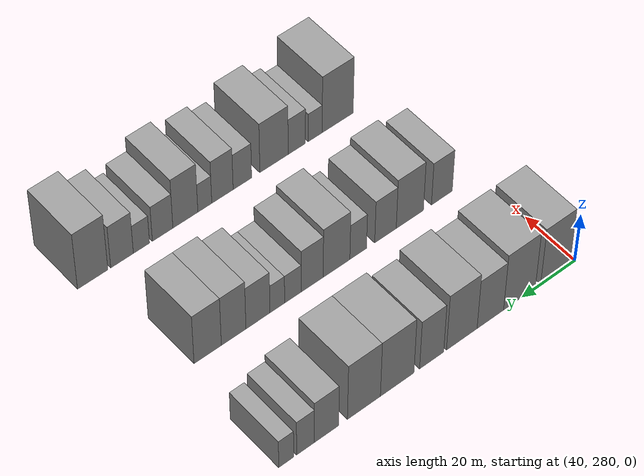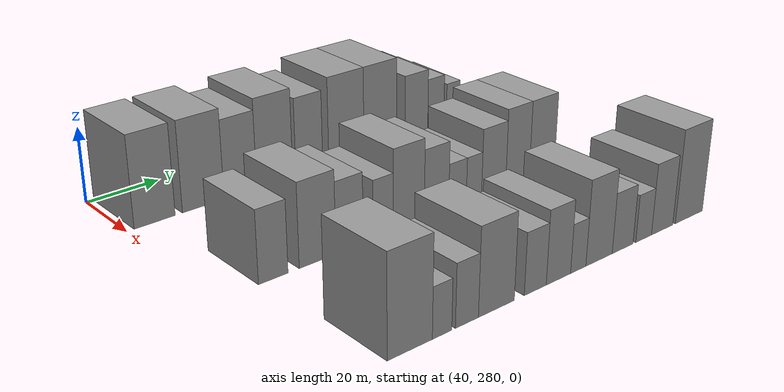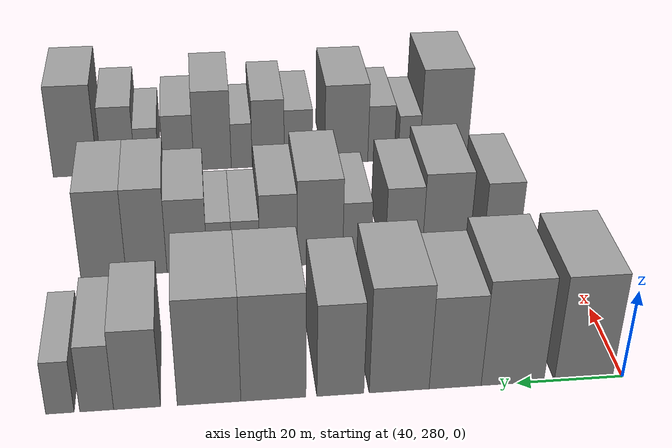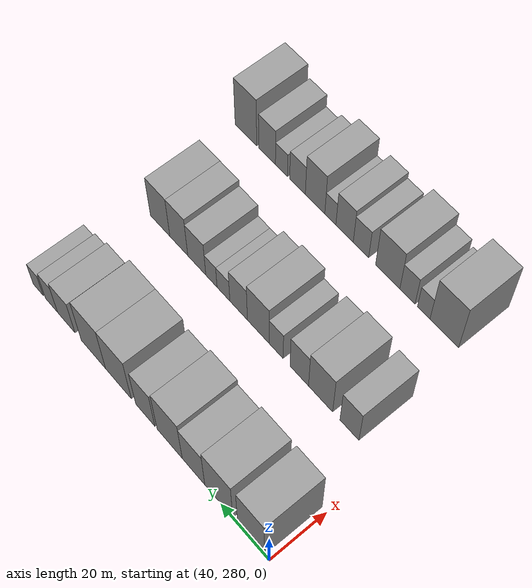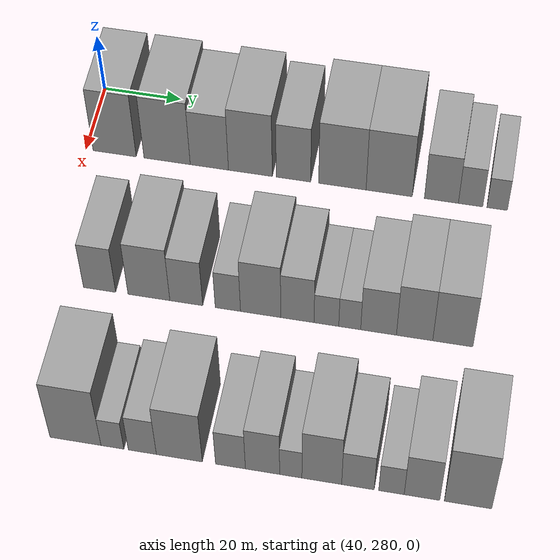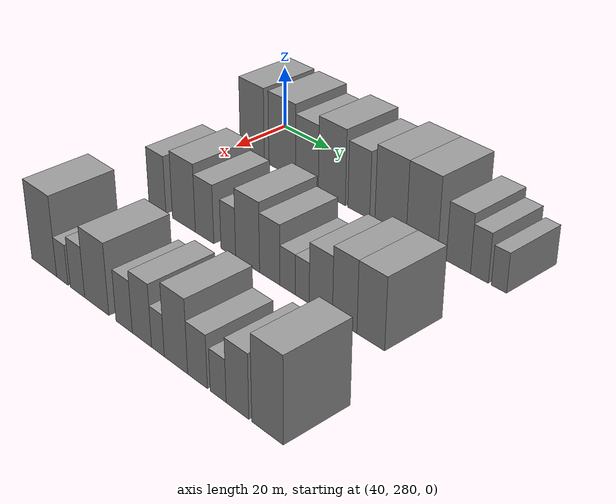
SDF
<sdf version="1.6">
 <world name="default">
  <model name="building_72">
   <static>1</static>
   <pose>50.0000 287.4389 0 0.000000 0.000000 0.000000</pose>
   <link name="link">
    <pose>0 0 12.00 0 0 0</pose>
    <collision name="collision"><geometry><box><size>20.0000 11.0561 24.0000</size></box></geometry></collision>
    <visual name="visual">
     <cast_shadows>0</cast_shadows>
     <geometry><box><size>20.0000 11.0561 24.0000</size></box></geometry>
     <material>
      <script>
       <uri>model://grey_wall/materials/scripts</uri>
       <uri>model://grey_wall/materials/textures</uri>
       <name>vrc/grey_wall</name>
      </script>
     </material>
    </visual>
   </link>
  </model>
  <model name="building_73">
   <static>1</static>
   <pose>50.0000 300.8716 0 0.000000 0.000000 0.000000</pose>
   <link name="link">
    <pose>0 0 12.00 0 0 0</pose>
    <collision name="collision"><geometry><box><size>20.0000 11.8092 24.0000</size></box></geometry></collision>
    <visual name="visual">
     <cast_shadows>0</cast_shadows>
     <geometry><box><size>20.0000 11.8092 24.0000</size></box></geometry>
     <material>
      <script>
       <uri>model://grey_wall/materials/scripts</uri>
       <uri>model://grey_wall/materials/textures</uri>
       <name>vrc/grey_wall</name>
      </script>
     </material>
    </visual>
   </link>
  </model>
  <model name="building_74">
   <static>1</static>
   <pose>50.0000 311.6322 0 0.000000 0.000000 0.000000</pose>
   <link name="link">
    <pose>0 0 10.50 0 0 0</pose>
    <collision name="collision"><geometry><box><size>20.0000 9.7121 21.0000</size></box></geometry></collision>
    <visual name="visual">
     <cast_shadows>0</cast_shadows>
     <geometry><box><size>20.0000 9.7121 21.0000</size></box></geometry>
     <material>
      <script>
       <uri>model://grey_wall/materials/scripts</uri>
       <uri>model://grey_wall/materials/textures</uri>
       <name>vrc/grey_wall</name>
      </script>
     </material>
    </visual>
   </link>
  </model>
  <model name="building_75">
   <static>1</static>
   <pose>50.0000 322.0391 0 0.000000 0.000000 0.000000</pose>
   <link name="link">
    <pose>0 0 12.00 0 0 0</pose>
    <collision name="collision"><geometry><box><size>20.0000 11.1015 24.0000</size></box></geometry></collision>
    <visual name="visual">
     <cast_shadows>0</cast_shadows>
     <geometry><box><size>20.0000 11.1015 24.0000</size></box></geometry>
     <material>
      <script>
       <uri>model://grey_wall/materials/scripts</uri>
       <uri>model://grey_wall/materials/textures</uri>
       <name>vrc/grey_wall</name>
      </script>
     </material>
    </visual>
   </link>
  </model>
  <model name="building_76">
   <static>1</static>
   <pose>50.0000 332.9055 0 0.000000 0.000000 0.000000</pose>
   <link name="link">
    <pose>0 0 10.50 0 0 0</pose>
    <collision name="collision"><geometry><box><size>20.0000 8.6314 21.0000</size></box></geometry></collision>
    <visual name="visual">
     <cast_shadows>0</cast_shadows>
     <geometry><box><size>20.0000 8.6314 21.0000</size></box></geometry>
     <material>
      <script>
       <uri>model://grey_wall/materials/scripts</uri>
       <uri>model://grey_wall/materials/textures</uri>
       <name>vrc/grey_wall</name>
      </script>
     </material>
    </visual>
   </link>
  </model>
  <model name="building_77">
   <static>1</static>
   <pose>50.0000 345.1486 0 0.000000 0.000000 0.000000</pose>
   <link name="link">
    <pose>0 0 12.00 0 0 0</pose>
    <collision name="collision"><geometry><box><size>20.0000 11.8547 24.0000</size></box></geometry></collision>
    <visual name="visual">
     <cast_shadows>0</cast_shadows>
     <geometry><box><size>20.0000 11.8547 24.0000</size></box></geometry>
     <material>
      <script>
       <uri>model://grey_wall/materials/scripts</uri>
       <uri>model://grey_wall/materials/textures</uri>
       <name>vrc/grey_wall</name>
      </script>
     </material>
    </visual>
   </link>
  </model>
  <model name="building_78">
   <static>1</static>
   <pose>50.0000 356.8210 0 0.000000 0.000000 0.000000</pose>
   <link name="link">
    <pose>0 0 12.00 0 0 0</pose>
    <collision name="collision"><geometry><box><size>20.0000 11.4901 24.0000</size></box></geometry></collision>
    <visual name="visual">
     <cast_shadows>0</cast_shadows>
     <geometry><box><size>20.0000 11.4901 24.0000</size></box></geometry>
     <material>
      <script>
       <uri>model://grey_wall/materials/scripts</uri>
       <uri>model://grey_wall/materials/textures</uri>
       <name>vrc/grey_wall</name>
      </script>
     </material>
    </visual>
   </link>
  </model>
  <model name="building_79">
   <static>1</static>
   <pose>50.0000 369.7659 0 0.000000 0.000000 0.000000</pose>
   <link name="link">
    <pose>0 0 9.00 0 0 0</pose>
    <collision name="collision"><geometry><box><size>20.0000 8.3997 18.0000</size></box></geometry></collision>
    <visual name="visual">
     <cast_shadows>0</cast_shadows>
     <geometry><box><size>20.0000 8.3997 18.0000</size></box></geometry>
     <material>
      <script>
       <uri>model://grey_wall/materials/scripts</uri>
       <uri>model://grey_wall/materials/textures</uri>
       <name>vrc/grey_wall</name>
      </script>
     </material>
    </visual>
   </link>
  </model>
  <model name="building_80">
   <static>1</static>
   <pose>50.0000 376.9768 0 0.000000 0.000000 0.000000</pose>
   <link name="link">
    <pose>0 0 7.50 0 0 0</pose>
    <collision name="collision"><geometry><box><size>20.0000 6.0222 15.0000</size></box></geometry></collision>
    <visual name="visual">
     <cast_shadows>0</cast_shadows>
     <geometry><box><size>20.0000 6.0222 15.0000</size></box></geometry>
     <material>
      <script>
       <uri>model://grey_wall/materials/scripts</uri>
       <uri>model://grey_wall/materials/textures</uri>
       <name>vrc/grey_wall</name>
      </script>
     </material>
    </visual>
   </link>
  </model>
  <model name="building_81">
   <static>1</static>
   <pose>50.0000 383.5068 0 0.000000 0.000000 0.000000</pose>
   <link name="link">
    <pose>0 0 6.00 0 0 0</pose>
    <collision name="collision"><geometry><box><size>20.0000 5.0378 12.0000</size></box></geometry></collision>
    <visual name="visual">
     <cast_shadows>0</cast_shadows>
     <geometry><box><size>20.0000 5.0378 12.0000</size></box></geometry>
     <material>
      <script>
       <uri>model://grey_wall/materials/scripts</uri>
       <uri>model://grey_wall/materials/textures</uri>
       <name>vrc/grey_wall</name>
      </script>
     </material>
    </visual>
   </link>
  </model>
  <model name="building_155">
   <static>1</static>
   <pose>90.0000 293.4682 0 0.000000 0.000000 0.000000</pose>
   <link name="link">
    <pose>0 0 9.00 0 0 0</pose>
    <collision name="collision"><geometry><box><size>20.0000 7.8182 18.0000</size></box></geometry></collision>
    <visual name="visual">
     <cast_shadows>0</cast_shadows>
     <geometry><box><size>20.0000 7.8182 18.0000</size></box></geometry>
     <material>
      <script>
       <uri>model://grey_wall/materials/scripts</uri>
       <uri>model://grey_wall/materials/textures</uri>
       <name>vrc/grey_wall</name>
      </script>
     </material>
    </visual>
   </link>
  </model>
  <model name="building_156">
   <static>1</static>
   <pose>90.0000 305.4412 0 0.000000 0.000000 0.000000</pose>
   <link name="link">
    <pose>0 0 10.50 0 0 0</pose>
    <collision name="collision"><geometry><box><size>20.0000 10.1280 21.0000</size></box></geometry></collision>
    <visual name="visual">
     <cast_shadows>0</cast_shadows>
     <geometry><box><size>20.0000 10.1280 21.0000</size></box></geometry>
     <material>
      <script>
       <uri>model://grey_wall/materials/scripts</uri>
       <uri>model://grey_wall/materials/textures</uri>
       <name>vrc/grey_wall</name>
      </script>
     </material>
    </visual>
   </link>
  </model>
  <model name="building_157">
   <static>1</static>
   <pose>90.0000 314.4631 0 0.000000 0.000000 0.000000</pose>
   <link name="link">
    <pose>0 0 9.00 0 0 0</pose>
    <collision name="collision"><geometry><box><size>20.0000 7.9158 18.0000</size></box></geometry></collision>
    <visual name="visual">
     <cast_shadows>0</cast_shadows>
     <geometry><box><size>20.0000 7.9158 18.0000</size></box></geometry>
     <material>
      <script>
       <uri>model://grey_wall/materials/scripts</uri>
       <uri>model://grey_wall/materials/textures</uri>
       <name>vrc/grey_wall</name>
      </script>
     </material>
    </visual>
   </link>
  </model>
  <model name="building_158">
   <static>1</static>
   <pose>90.0000 324.4519 0 0.000000 0.000000 0.000000</pose>
   <link name="link">
    <pose>0 0 7.50 0 0 0</pose>
    <collision name="collision"><geometry><box><size>20.0000 6.0619 15.0000</size></box></geometry></collision>
    <visual name="visual">
     <cast_shadows>0</cast_shadows>
     <geometry><box><size>20.0000 6.0619 15.0000</size></box></geometry>
     <material>
      <script>
       <uri>model://grey_wall/materials/scripts</uri>
       <uri>model://grey_wall/materials/textures</uri>
       <name>vrc/grey_wall</name>
      </script>
     </material>
    </visual>
   </link>
  </model>
  <model name="building_159">
   <static>1</static>
   <pose>90.0000 332.3024 0 0.000000 0.000000 0.000000</pose>
   <link name="link">
    <pose>0 0 10.50 0 0 0</pose>
    <collision name="collision"><geometry><box><size>20.0000 9.6391 21.0000</size></box></geometry></collision>
    <visual name="visual">
     <cast_shadows>0</cast_shadows>
     <geometry><box><size>20.0000 9.6391 21.0000</size></box></geometry>
     <material>
      <script>
       <uri>model://grey_wall/materials/scripts</uri>
       <uri>model://grey_wall/materials/textures</uri>
       <name>vrc/grey_wall</name>
      </script>
     </material>
    </visual>
   </link>
  </model>
  <model name="building_160">
   <static>1</static>
   <pose>90.0000 341.0621 0 0.000000 0.000000 0.000000</pose>
   <link name="link">
    <pose>0 0 9.00 0 0 0</pose>
    <collision name="collision"><geometry><box><size>20.0000 7.8801 18.0000</size></box></geometry></collision>
    <visual name="visual">
     <cast_shadows>0</cast_shadows>
     <geometry><box><size>20.0000 7.8801 18.0000</size></box></geometry>
     <material>
      <script>
       <uri>model://grey_wall/materials/scripts</uri>
       <uri>model://grey_wall/materials/textures</uri>
       <name>vrc/grey_wall</name>
      </script>
     </material>
    </visual>
   </link>
  </model>
  <model name="building_161">
   <static>1</static>
   <pose>90.0000 347.9253 0 0.000000 0.000000 0.000000</pose>
   <link name="link">
    <pose>0 0 6.00 0 0 0</pose>
    <collision name="collision"><geometry><box><size>20.0000 5.8463 12.0000</size></box></geometry></collision>
    <visual name="visual">
     <cast_shadows>0</cast_shadows>
     <geometry><box><size>20.0000 5.8463 12.0000</size></box></geometry>
     <material>
      <script>
       <uri>model://grey_wall/materials/scripts</uri>
       <uri>model://grey_wall/materials/textures</uri>
       <name>vrc/grey_wall</name>
      </script>
     </material>
    </visual>
   </link>
  </model>
  <model name="building_162">
   <static>1</static>
   <pose>90.0000 353.4362 0 0.000000 0.000000 0.000000</pose>
   <link name="link">
    <pose>0 0 6.00 0 0 0</pose>
    <collision name="collision"><geometry><box><size>20.0000 5.1756 12.0000</size></box></geometry></collision>
    <visual name="visual">
     <cast_shadows>0</cast_shadows>
     <geometry><box><size>20.0000 5.1756 12.0000</size></box></geometry>
     <material>
      <script>
       <uri>model://grey_wall/materials/scripts</uri>
       <uri>model://grey_wall/materials/textures</uri>
       <name>vrc/grey_wall</name>
      </script>
     </material>
    </visual>
   </link>
  </model>
  <model name="building_163">
   <static>1</static>
   <pose>90.0000 360.2272 0 0.000000 0.000000 0.000000</pose>
   <link name="link">
    <pose>0 0 9.00 0 0 0</pose>
    <collision name="collision"><geometry><box><size>20.0000 8.4065 18.0000</size></box></geometry></collision>
    <visual name="visual">
     <cast_shadows>0</cast_shadows>
     <geometry><box><size>20.0000 8.4065 18.0000</size></box></geometry>
     <material>
      <script>
       <uri>model://grey_wall/materials/scripts</uri>
       <uri>model://grey_wall/materials/textures</uri>
       <name>vrc/grey_wall</name>
      </script>
     </material>
    </visual>
   </link>
  </model>
  <model name="building_164">
   <static>1</static>
   <pose>90.0000 368.6863 0 0.000000 0.000000 0.000000</pose>
   <link name="link">
    <pose>0 0 10.50 0 0 0</pose>
    <collision name="collision"><geometry><box><size>20.0000 8.5117 21.0000</size></box></geometry></collision>
    <visual name="visual">
     <cast_shadows>0</cast_shadows>
     <geometry><box><size>20.0000 8.5117 21.0000</size></box></geometry>
     <material>
      <script>
       <uri>model://grey_wall/materials/scripts</uri>
       <uri>model://grey_wall/materials/textures</uri>
       <name>vrc/grey_wall</name>
      </script>
     </material>
    </visual>
   </link>
  </model>
  <model name="building_165">
   <static>1</static>
   <pose>90.0000 377.6311 0 0.000000 0.000000 0.000000</pose>
   <link name="link">
    <pose>0 0 10.50 0 0 0</pose>
    <collision name="collision"><geometry><box><size>20.0000 9.3778 21.0000</size></box></geometry></collision>
    <visual name="visual">
     <cast_shadows>0</cast_shadows>
     <geometry><box><size>20.0000 9.3778 21.0000</size></box></geometry>
     <material>
      <script>
       <uri>model://grey_wall/materials/scripts</uri>
       <uri>model://grey_wall/materials/textures</uri>
       <name>vrc/grey_wall</name>
      </script>
     </material>
    </visual>
   </link>
  </model>
  <model name="building_247">
   <static>1</static>
   <pose>130.0000 297.8527 0 0.000000 0.000000 0.000000</pose>
   <link name="link">
    <pose>0 0 12.00 0 0 0</pose>
    <collision name="collision"><geometry><box><size>20.0000 11.7107 24.0000</size></box></geometry></collision>
    <visual name="visual">
     <cast_shadows>0</cast_shadows>
     <geometry><box><size>20.0000 11.7107 24.0000</size></box></geometry>
     <material>
      <script>
       <uri>model://grey_wall/materials/scripts</uri>
       <uri>model://grey_wall/materials/textures</uri>
       <name>vrc/grey_wall</name>
      </script>
     </material>
    </visual>
   </link>
  </model>
  <model name="building_248">
   <static>1</static>
   <pose>130.0000 306.3277 0 0.000000 0.000000 0.000000</pose>
   <link name="link">
    <pose>0 0 6.00 0 0 0</pose>
    <collision name="collision"><geometry><box><size>20.0000 5.2392 12.0000</size></box></geometry></collision>
    <visual name="visual">
     <cast_shadows>0</cast_shadows>
     <geometry><box><size>20.0000 5.2392 12.0000</size></box></geometry>
     <material>
      <script>
       <uri>model://grey_wall/materials/scripts</uri>
       <uri>model://grey_wall/materials/textures</uri>
       <name>vrc/grey_wall</name>
      </script>
     </material>
    </visual>
   </link>
  </model>
  <model name="building_249">
   <static>1</static>
   <pose>130.0000 313.1534 0 0.000000 0.000000 0.000000</pose>
   <link name="link">
    <pose>0 0 7.50 0 0 0</pose>
    <collision name="collision"><geometry><box><size>20.0000 6.4121 15.0000</size></box></geometry></collision>
    <visual name="visual">
     <cast_shadows>0</cast_shadows>
     <geometry><box><size>20.0000 6.4121 15.0000</size></box></geometry>
     <material>
      <script>
       <uri>model://grey_wall/materials/scripts</uri>
       <uri>model://grey_wall/materials/textures</uri>
       <name>vrc/grey_wall</name>
      </script>
     </material>
    </visual>
   </link>
  </model>
  <model name="building_250">
   <static>1</static>
   <pose>130.0000 321.5739 0 0.000000 0.000000 0.000000</pose>
   <link name="link">
    <pose>0 0 10.50 0 0 0</pose>
    <collision name="collision"><geometry><box><size>20.0000 10.4289 21.0000</size></box></geometry></collision>
    <visual name="visual">
     <cast_shadows>0</cast_shadows>
     <geometry><box><size>20.0000 10.4289 21.0000</size></box></geometry>
     <material>
      <script>
       <uri>model://grey_wall/materials/scripts</uri>
       <uri>model://grey_wall/materials/textures</uri>
       <name>vrc/grey_wall</name>
      </script>
     </material>
    </visual>
   </link>
  </model>
  <model name="building_251">
   <static>1</static>
   <pose>130.0000 333.1523 0 0.000000 0.000000 0.000000</pose>
   <link name="link">
    <pose>0 0 7.50 0 0 0</pose>
    <collision name="collision"><geometry><box><size>20.0000 6.7279 15.0000</size></box></geometry></collision>
    <visual name="visual">
     <cast_shadows>0</cast_shadows>
     <geometry><box><size>20.0000 6.7279 15.0000</size></box></geometry>
     <material>
      <script>
       <uri>model://grey_wall/materials/scripts</uri>
       <uri>model://grey_wall/materials/textures</uri>
       <name>vrc/grey_wall</name>
      </script>
     </material>
    </visual>
   </link>
  </model>
  <model name="building_252">
   <static>1</static>
   <pose>130.0000 340.3720 0 0.000000 0.000000 0.000000</pose>
   <link name="link">
    <pose>0 0 9.00 0 0 0</pose>
    <collision name="collision"><geometry><box><size>20.0000 7.7116 18.0000</size></box></geometry></collision>
    <visual name="visual">
     <cast_shadows>0</cast_shadows>
     <geometry><box><size>20.0000 7.7116 18.0000</size></box></geometry>
     <material>
      <script>
       <uri>model://grey_wall/materials/scripts</uri>
       <uri>model://grey_wall/materials/textures</uri>
       <name>vrc/grey_wall</name>
      </script>
     </material>
    </visual>
   </link>
  </model>
  <model name="building_253">
   <static>1</static>
   <pose>130.0000 346.7185 0 0.000000 0.000000 0.000000</pose>
   <link name="link">
    <pose>0 0 6.00 0 0 0</pose>
    <collision name="collision"><geometry><box><size>20.0000 4.9816 12.0000</size></box></geometry></collision>
    <visual name="visual">
     <cast_shadows>0</cast_shadows>
     <geometry><box><size>20.0000 4.9816 12.0000</size></box></geometry>
     <material>
      <script>
       <uri>model://grey_wall/materials/scripts</uri>
       <uri>model://grey_wall/materials/textures</uri>
       <name>vrc/grey_wall</name>
      </script>
     </material>
    </visual>
   </link>
  </model>
  <model name="building_254">
   <static>1</static>
   <pose>130.0000 353.6443 0 0.000000 0.000000 0.000000</pose>
   <link name="link">
    <pose>0 0 10.50 0 0 0</pose>
    <collision name="collision"><geometry><box><size>20.0000 8.8699 21.0000</size></box></geometry></collision>
    <visual name="visual">
     <cast_shadows>0</cast_shadows>
     <geometry><box><size>20.0000 8.8699 21.0000</size></box></geometry>
     <material>
      <script>
       <uri>model://grey_wall/materials/scripts</uri>
       <uri>model://grey_wall/materials/textures</uri>
       <name>vrc/grey_wall</name>
      </script>
     </material>
    </visual>
   </link>
  </model>
  <model name="building_255">
   <static>1</static>
   <pose>130.0000 361.6940 0 0.000000 0.000000 0.000000</pose>
   <link name="link">
    <pose>0 0 7.50 0 0 0</pose>
    <collision name="collision"><geometry><box><size>20.0000 7.2296 15.0000</size></box></geometry></collision>
    <visual name="visual">
     <cast_shadows>0</cast_shadows>
     <geometry><box><size>20.0000 7.2296 15.0000</size></box></geometry>
     <material>
      <script>
       <uri>model://grey_wall/materials/scripts</uri>
       <uri>model://grey_wall/materials/textures</uri>
       <name>vrc/grey_wall</name>
      </script>
     </material>
    </visual>
   </link>
  </model>
  <model name="building_256">
   <static>1</static>
   <pose>130.0000 369.1325 0 0.000000 0.000000 0.000000</pose>
   <link name="link">
    <pose>0 0 6.00 0 0 0</pose>
    <collision name="collision"><geometry><box><size>20.0000 5.6474 12.0000</size></box></geometry></collision>
    <visual name="visual">
     <cast_shadows>0</cast_shadows>
     <geometry><box><size>20.0000 5.6474 12.0000</size></box></geometry>
     <material>
      <script>
       <uri>model://grey_wall/materials/scripts</uri>
       <uri>model://grey_wall/materials/textures</uri>
       <name>vrc/grey_wall</name>
      </script>
     </material>
    </visual>
   </link>
  </model>
  <model name="building_257">
   <static>1</static>
   <pose>130.0000 375.8802 0 0.000000 0.000000 0.000000</pose>
   <link name="link">
    <pose>0 0 9.00 0 0 0</pose>
    <collision name="collision"><geometry><box><size>20.0000 7.8480 18.0000</size></box></geometry></collision>
    <visual name="visual">
     <cast_shadows>0</cast_shadows>
     <geometry><box><size>20.0000 7.8480 18.0000</size></box></geometry>
     <material>
      <script>
       <uri>model://grey_wall/materials/scripts</uri>
       <uri>model://grey_wall/materials/textures</uri>
       <name>vrc/grey_wall</name>
      </script>
     </material>
    </visual>
   </link>
  </model>
  <model name="building_258">
   <static>1</static>
   <pose>130.0000 386.0103 0 0.000000 0.000000 0.000000</pose>
   <link name="link">
    <pose>0 0 12.00 0 0 0</pose>
    <collision name="collision"><geometry><box><size>20.0000 10.4122 24.0000</size></box></geometry></collision>
    <visual name="visual">
     <cast_shadows>0</cast_shadows>
     <geometry><box><size>20.0000 10.4122 24.0000</size></box></geometry>
     <material>
      <script>
       <uri>model://grey_wall/materials/scripts</uri>
       <uri>model://grey_wall/materials/textures</uri>
       <name>vrc/grey_wall</name>
      </script>
     </material>
    </visual>
   </link>
  </model>
 </world>
</sdf>
